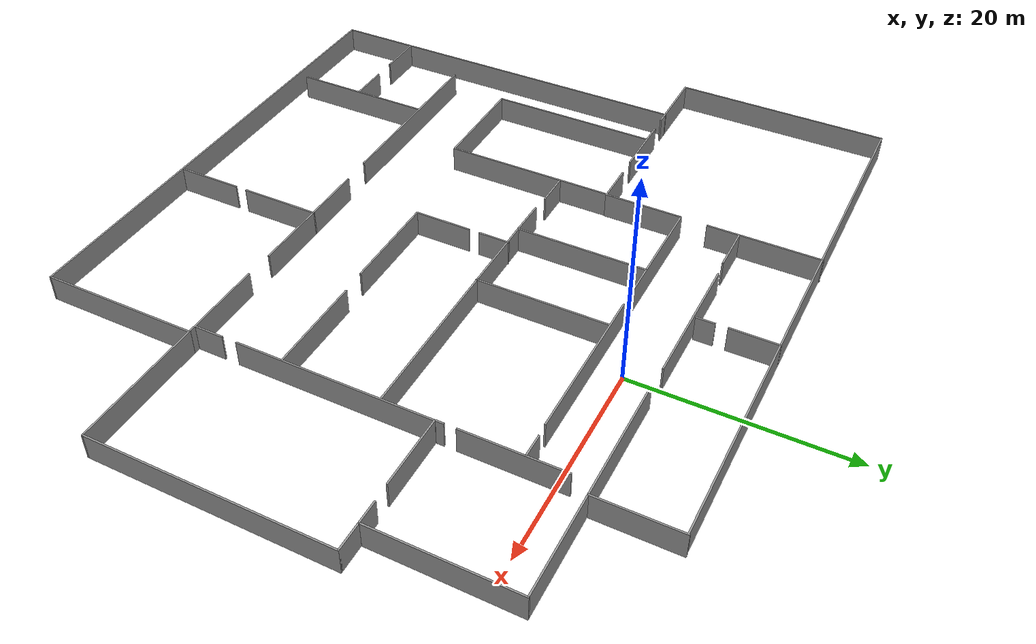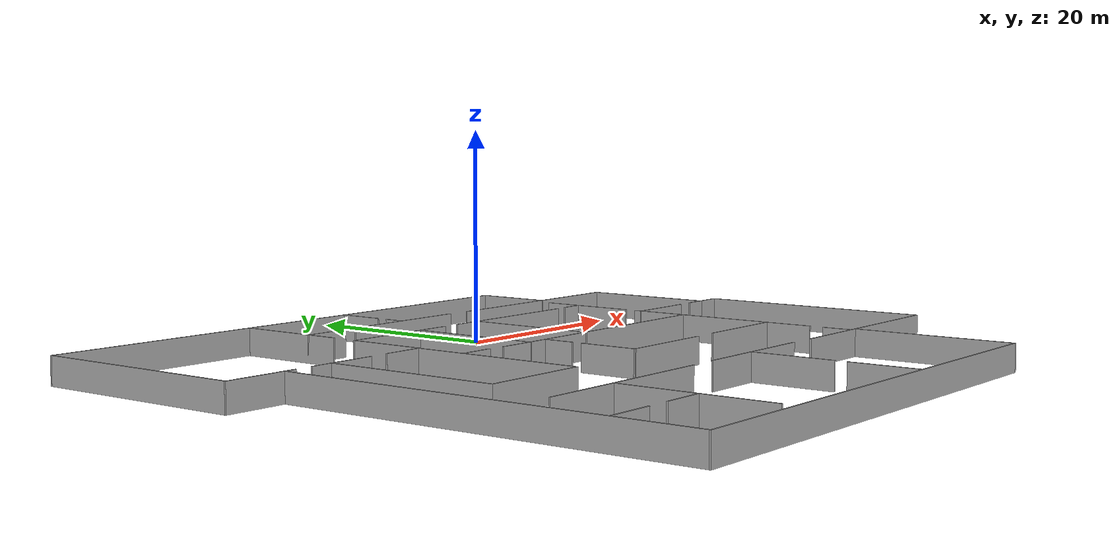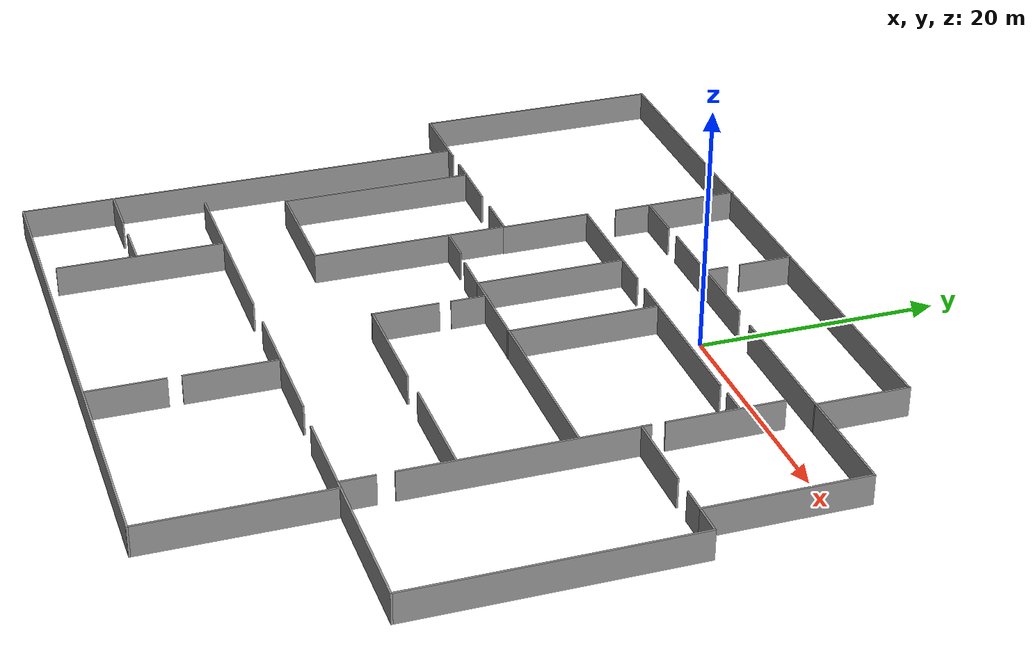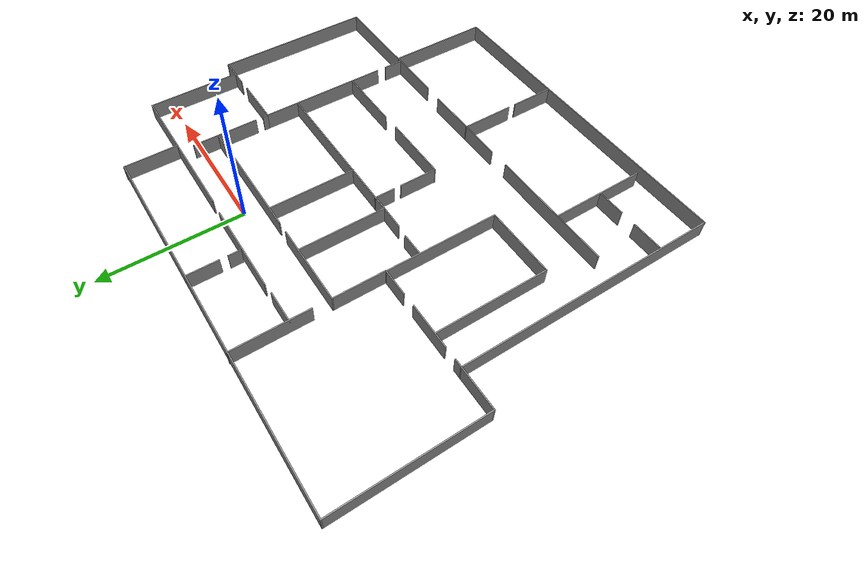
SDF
<?xml version='1.0'?>
<sdf version='1.6'>
  <model name='Untitled'>
    <pose frame=''>-6.86365 -18.3853 0 0 -0 0</pose>
    <link name='Wall_10'>
      <collision name='Wall_10_Collision'>
        <geometry>
          <box>
            <size>48 0.15 2.5</size>
          </box>
        </geometry>
        <pose frame=''>0 0 1.25 0 -0 0</pose>
      </collision>
      <visual name='Wall_10_Visual'>
        <pose frame=''>0 0 1.25 0 -0 0</pose>
        <geometry>
          <box>
            <size>48 0.15 2.5</size>
          </box>
        </geometry>
        <material>
          <script>
            <uri>file://media/materials/scripts/gazebo.material</uri>
            <name>Gazebo/Grey</name>
          </script>
          <ambient>1 1 1 1</ambient>
        </material>
        <meta>
          <layer>0</layer>
        </meta>
      </visual>
      <pose frame=''>-3.38843 -29.0855 0 0 -0 -3.14158</pose>
    </link>
    <link name='Wall_11'>
      <collision name='Wall_11_Collision'>
        <geometry>
          <box>
            <size>37.681 0.15 2.5</size>
          </box>
        </geometry>
        <pose frame=''>0 0 1.25 0 -0 0</pose>
      </collision>
      <visual name='Wall_11_Visual'>
        <pose frame=''>0 0 1.25 0 -0 0</pose>
        <geometry>
          <box>
            <size>37.681 0.15 2.5</size>
          </box>
        </geometry>
        <material>
          <script>
            <uri>file://media/materials/scripts/gazebo.material</uri>
            <name>Gazebo/Grey</name>
          </script>
          <ambient>1 1 1 1</ambient>
        </material>
        <meta>
          <layer>0</layer>
        </meta>
      </visual>
      <pose frame=''>-27.3133 -10.3202 0 0 -0 1.5708</pose>
    </link>
    <link name='Wall_12'>
      <collision name='Wall_12_Collision'>
        <geometry>
          <box>
            <size>5.97327 0.15 2.5</size>
          </box>
        </geometry>
        <pose frame=''>0 0 1.25 0 -0 0</pose>
      </collision>
      <visual name='Wall_12_Visual'>
        <pose frame=''>0 0 1.25 0 -0 0</pose>
        <geometry>
          <box>
            <size>5.97327 0.15 2.5</size>
          </box>
        </geometry>
        <material>
          <script>
            <uri>file://media/materials/scripts/gazebo.material</uri>
            <name>Gazebo/Grey</name>
          </script>
          <ambient>1 1 1 1</ambient>
        </material>
        <meta>
          <layer>0</layer>
        </meta>
      </visual>
      <pose frame=''>-30.2248 8.44476 0 0 -0 -3.14142</pose>
    </link>
    <link name='Wall_13'>
      <collision name='Wall_13_Collision'>
        <geometry>
          <box>
            <size>20.708 0.15 2.5</size>
          </box>
        </geometry>
        <pose frame=''>0 0 1.25 0 -0 0</pose>
      </collision>
      <visual name='Wall_13_Visual'>
        <pose frame=''>0 0 1.25 0 -0 0</pose>
        <geometry>
          <box>
            <size>20.708 0.15 2.5</size>
          </box>
        </geometry>
        <material>
          <script>
            <uri>file://media/materials/scripts/gazebo.material</uri>
            <name>Gazebo/Grey</name>
          </script>
          <ambient>1 1 1 1</ambient>
        </material>
        <meta>
          <layer>0</layer>
        </meta>
      </visual>
      <pose frame=''>-33.1363 18.7233 0 0 -0 1.5708</pose>
    </link>
    <link name='Wall_18'>
      <collision name='Wall_18_Collision'>
        <geometry>
          <box>
            <size>8.25 0.15 2.5</size>
          </box>
        </geometry>
        <pose frame=''>0 0 1.25 0 -0 0</pose>
      </collision>
      <visual name='Wall_18_Visual'>
        <pose frame=''>0 0 1.25 0 -0 0</pose>
        <geometry>
          <box>
            <size>8.25 0.15 2.5</size>
          </box>
        </geometry>
        <material>
          <script>
            <uri>file://media/materials/scripts/gazebo.material</uri>
            <name>Gazebo/Grey</name>
          </script>
          <ambient>1 1 1 1</ambient>
        </material>
        <meta>
          <layer>0</layer>
        </meta>
      </visual>
      <pose frame=''>16.4865 -14.2353 0 0 -0 3.14159</pose>
    </link>
    <link name='Wall_2'>
      <collision name='Wall_2_Collision'>
        <geometry>
          <box>
            <size>54.223 0.15 2.5</size>
          </box>
        </geometry>
        <pose frame=''>0 0 1.25 0 -0 0</pose>
      </collision>
      <visual name='Wall_2_Visual'>
        <pose frame=''>0 0 1.25 0 -0 0</pose>
        <geometry>
          <box>
            <size>54.223 0.15 2.5</size>
          </box>
        </geometry>
        <material>
          <script>
            <uri>file://media/materials/scripts/gazebo.material</uri>
            <name>Gazebo/Grey</name>
          </script>
          <ambient>1 1 1 1</ambient>
        </material>
        <meta>
          <layer>0</layer>
        </meta>
      </visual>
      <pose frame=''>-6.09985 29.002 0 0 -0 0</pose>
    </link>
    <link name='Wall_20'>
      <collision name='Wall_20_Collision'>
        <geometry>
          <box>
            <size>12.869 0.15 2.5</size>
          </box>
        </geometry>
        <pose frame=''>0 0 1.25 0 -0 0</pose>
      </collision>
      <visual name='Wall_20_Visual'>
        <pose frame=''>0 0 1.25 0 -0 0</pose>
        <geometry>
          <box>
            <size>12.869 0.15 2.5</size>
          </box>
        </geometry>
        <material>
          <script>
            <uri>file://media/materials/scripts/gazebo.material</uri>
            <name>Gazebo/Grey</name>
          </script>
          <ambient>1 1 1 1</ambient>
        </material>
        <meta>
          <layer>0</layer>
        </meta>
      </visual>
      <pose frame=''>3.22315 -14.1347 0 0 -0 3.14159</pose>
    </link>
    <link name='Wall_22'>
      <collision name='Wall_22_Collision'>
        <geometry>
          <box>
            <size>18.15 0.15 2.5</size>
          </box>
        </geometry>
        <pose frame=''>0 0 1.25 0 -0 0</pose>
      </collision>
      <visual name='Wall_22_Visual'>
        <pose frame=''>0 0 1.25 0 -0 0</pose>
        <geometry>
          <box>
            <size>18.15 0.15 2.5</size>
          </box>
        </geometry>
        <material>
          <script>
            <uri>file://media/materials/scripts/gazebo.material</uri>
            <name>Gazebo/Grey</name>
          </script>
          <ambient>1 1 1 1</ambient>
        </material>
        <meta>
          <layer>0</layer>
        </meta>
      </visual>
      <pose frame=''>-15.1363 -14.2037 0 0 -0 3.14159</pose>
    </link>
    <link name='Wall_24'>
      <collision name='Wall_24_Collision'>
        <geometry>
          <box>
            <size>13.75 0.15 2.5</size>
          </box>
        </geometry>
        <pose frame=''>0 0 1.25 0 -0 0</pose>
      </collision>
      <visual name='Wall_24_Visual'>
        <pose frame=''>0 0 1.25 0 -0 0</pose>
        <geometry>
          <box>
            <size>13.75 0.15 2.5</size>
          </box>
        </geometry>
        <material>
          <script>
            <uri>file://media/materials/scripts/gazebo.material</uri>
            <name>Gazebo/Grey</name>
          </script>
          <ambient>1 1 1 1</ambient>
        </material>
        <meta>
          <layer>0</layer>
        </meta>
      </visual>
      <pose frame=''>-16.6456 -21.1328 0 0 -0 -1.5708</pose>
    </link>
    <link name='Wall_26'>
      <collision name='Wall_26_Collision'>
        <geometry>
          <box>
            <size>7.636 0.15 2.5</size>
          </box>
        </geometry>
        <pose frame=''>0 0 1.25 0 -0 0</pose>
      </collision>
      <visual name='Wall_26_Visual'>
        <pose frame=''>0 0 1.25 0 -0 0</pose>
        <geometry>
          <box>
            <size>7.636 0.15 2.5</size>
          </box>
        </geometry>
        <material>
          <script>
            <uri>file://media/materials/scripts/gazebo.material</uri>
            <name>Gazebo/Grey</name>
          </script>
          <ambient>1 1 1 1</ambient>
        </material>
        <meta>
          <layer>0</layer>
        </meta>
      </visual>
      <pose frame=''>2.68865 -17.8717 0 0 -0 -1.5708</pose>
    </link>
    <link name='Wall_28'>
      <collision name='Wall_28_Collision'>
        <geometry>
          <box>
            <size>6.25 0.15 2.5</size>
          </box>
        </geometry>
        <pose frame=''>0 0 1.25 0 -0 0</pose>
      </collision>
      <visual name='Wall_28_Visual'>
        <pose frame=''>0 0 1.25 0 -0 0</pose>
        <geometry>
          <box>
            <size>6.25 0.15 2.5</size>
          </box>
        </geometry>
        <material>
          <script>
            <uri>file://media/materials/scripts/gazebo.material</uri>
            <name>Gazebo/Grey</name>
          </script>
          <ambient>1 1 1 1</ambient>
        </material>
        <meta>
          <layer>0</layer>
        </meta>
      </visual>
      <pose frame=''>2.68817 -25.8958 0 0 -0 -1.5708</pose>
    </link>
    <link name='Wall_3'>
      <collision name='Wall_3_Collision'>
        <geometry>
          <box>
            <size>7.74888 0.15 2.5</size>
          </box>
        </geometry>
        <pose frame=''>0 0 1.25 0 -0 0</pose>
      </collision>
      <visual name='Wall_3_Visual'>
        <pose frame=''>0 0 1.25 0 -0 0</pose>
        <geometry>
          <box>
            <size>7.74888 0.15 2.5</size>
          </box>
        </geometry>
        <material>
          <script>
            <uri>file://media/materials/scripts/gazebo.material</uri>
            <name>Gazebo/Grey</name>
          </script>
          <ambient>1 1 1 1</ambient>
        </material>
        <meta>
          <layer>0</layer>
        </meta>
      </visual>
      <pose frame=''>20.9366 25.2641 0 0 -0 -1.57082</pose>
    </link>
    <link name='Wall_30'>
      <collision name='Wall_30_Collision'>
        <geometry>
          <box>
            <size>4.5 0.15 2.5</size>
          </box>
        </geometry>
        <pose frame=''>0 0 1.25 0 -0 0</pose>
      </collision>
      <visual name='Wall_30_Visual'>
        <pose frame=''>0 0 1.25 0 -0 0</pose>
        <geometry>
          <box>
            <size>4.5 0.15 2.5</size>
          </box>
        </geometry>
        <material>
          <script>
            <uri>file://media/materials/scripts/gazebo.material</uri>
            <name>Gazebo/Grey</name>
          </script>
          <ambient>1 1 1 1</ambient>
        </material>
        <meta>
          <layer>0</layer>
        </meta>
      </visual>
      <pose frame=''>-25.0531 -21.4469 0 0 -0 0</pose>
    </link>
    <link name='Wall_32'>
      <collision name='Wall_32_Collision'>
        <geometry>
          <box>
            <size>4 0.15 2.5</size>
          </box>
        </geometry>
        <pose frame=''>0 0 1.25 0 -0 0</pose>
      </collision>
      <visual name='Wall_32_Visual'>
        <pose frame=''>0 0 1.25 0 -0 0</pose>
        <geometry>
          <box>
            <size>4 0.15 2.5</size>
          </box>
        </geometry>
        <material>
          <script>
            <uri>file://media/materials/scripts/gazebo.material</uri>
            <name>Gazebo/Grey</name>
          </script>
          <ambient>1 1 1 1</ambient>
        </material>
        <meta>
          <layer>0</layer>
        </meta>
      </visual>
      <pose frame=''>-18.6071 -21.4469 0 0 -0 3.14159</pose>
    </link>
    <link name='Wall_34'>
      <collision name='Wall_34_Collision'>
        <geometry>
          <box>
            <size>2.25 0.15 2.5</size>
          </box>
        </geometry>
        <pose frame=''>0 0 1.25 0 -0 0</pose>
      </collision>
      <visual name='Wall_34_Visual'>
        <pose frame=''>0 0 1.25 0 -0 0</pose>
        <geometry>
          <box>
            <size>2.25 0.15 2.5</size>
          </box>
        </geometry>
        <material>
          <script>
            <uri>file://media/materials/scripts/gazebo.material</uri>
            <name>Gazebo/Grey</name>
          </script>
          <ambient>1 1 1 1</ambient>
        </material>
        <meta>
          <layer>0</layer>
        </meta>
      </visual>
      <pose frame=''>29.4865 8.36469 0 0 -0 3.14159</pose>
    </link>
    <link name='Wall_36'>
      <collision name='Wall_36_Collision'>
        <geometry>
          <box>
            <size>2.75 0.15 2.5</size>
          </box>
        </geometry>
        <pose frame=''>0 0 1.25 0 -0 0</pose>
      </collision>
      <visual name='Wall_36_Visual'>
        <pose frame=''>0 0 1.25 0 -0 0</pose>
        <geometry>
          <box>
            <size>2.75 0.15 2.5</size>
          </box>
        </geometry>
        <material>
          <script>
            <uri>file://media/materials/scripts/gazebo.material</uri>
            <name>Gazebo/Grey</name>
          </script>
          <ambient>1 1 1 1</ambient>
        </material>
        <meta>
          <layer>0</layer>
        </meta>
      </visual>
      <pose frame=''>19.7986 -12.8292 0 0 -0 1.5708</pose>
    </link>
    <link name='Wall_38'>
      <collision name='Wall_38_Collision'>
        <geometry>
          <box>
            <size>18.5 0.15 2.5</size>
          </box>
        </geometry>
        <pose frame=''>0 0 1.25 0 -0 0</pose>
      </collision>
      <visual name='Wall_38_Visual'>
        <pose frame=''>0 0 1.25 0 -0 0</pose>
        <geometry>
          <box>
            <size>18.5 0.15 2.5</size>
          </box>
        </geometry>
        <material>
          <script>
            <uri>file://media/materials/scripts/gazebo.material</uri>
            <name>Gazebo/Grey</name>
          </script>
          <ambient>1 1 1 1</ambient>
        </material>
        <meta>
          <layer>0</layer>
        </meta>
      </visual>
      <pose frame=''>19.7986 -0.86493 0 0 -0 1.5708</pose>
    </link>
    <link name='Wall_4'>
      <collision name='Wall_4_Collision'>
        <geometry>
          <box>
            <size>9.75 0.15 2.5</size>
          </box>
        </geometry>
        <pose frame=''>0 0 1.25 0 -0 0</pose>
      </collision>
      <visual name='Wall_4_Visual'>
        <pose frame=''>0 0 1.25 0 -0 0</pose>
        <geometry>
          <box>
            <size>9.75 0.15 2.5</size>
          </box>
        </geometry>
        <material>
          <script>
            <uri>file://media/materials/scripts/gazebo.material</uri>
            <name>Gazebo/Grey</name>
          </script>
          <ambient>1 1 1 1</ambient>
        </material>
        <meta>
          <layer>0</layer>
        </meta>
      </visual>
      <pose frame=''>25.7365 21.4647 0 0 -0 0</pose>
    </link>
    <link name='Wall_40'>
      <collision name='Wall_40_Collision'>
        <geometry>
          <box>
            <size>7 0.15 2.5</size>
          </box>
        </geometry>
        <pose frame=''>0 0 1.25 0 -0 0</pose>
      </collision>
      <visual name='Wall_40_Visual'>
        <pose frame=''>0 0 1.25 0 -0 0</pose>
        <geometry>
          <box>
            <size>7 0.15 2.5</size>
          </box>
        </geometry>
        <material>
          <script>
            <uri>file://media/materials/scripts/gazebo.material</uri>
            <name>Gazebo/Grey</name>
          </script>
          <ambient>1 1 1 1</ambient>
        </material>
        <meta>
          <layer>0</layer>
        </meta>
      </visual>
      <pose frame=''>23.2236 8.31007 0 0 -0 0</pose>
    </link>
    <link name='Wall_42'>
      <collision name='Wall_42_Collision'>
        <geometry>
          <box>
            <size>0.75 0.15 2.5</size>
          </box>
        </geometry>
        <pose frame=''>0 0 1.25 0 -0 0</pose>
      </collision>
      <visual name='Wall_42_Visual'>
        <pose frame=''>0 0 1.25 0 -0 0</pose>
        <geometry>
          <box>
            <size>0.75 0.15 2.5</size>
          </box>
        </geometry>
        <material>
          <script>
            <uri>file://media/materials/scripts/gazebo.material</uri>
            <name>Gazebo/Grey</name>
          </script>
          <ambient>1 1 1 1</ambient>
        </material>
        <meta>
          <layer>0</layer>
        </meta>
      </visual>
      <pose frame=''>19.7645 8.73044 0 0 -0 1.5708</pose>
    </link>
    <link name='Wall_44'>
      <collision name='Wall_44_Collision'>
        <geometry>
          <box>
            <size>9.5 0.15 2.5</size>
          </box>
        </geometry>
        <pose frame=''>0 0 1.25 0 -0 0</pose>
      </collision>
      <visual name='Wall_44_Visual'>
        <pose frame=''>0 0 1.25 0 -0 0</pose>
        <geometry>
          <box>
            <size>9.5 0.15 2.5</size>
          </box>
        </geometry>
        <material>
          <script>
            <uri>file://media/materials/scripts/gazebo.material</uri>
            <name>Gazebo/Grey</name>
          </script>
          <ambient>1 1 1 1</ambient>
        </material>
        <meta>
          <layer>0</layer>
        </meta>
      </visual>
      <pose frame=''>19.7645 14.9017 0 0 -0 1.5708</pose>
    </link>
    <link name='Wall_47'>
      <collision name='Wall_47_Collision'>
        <geometry>
          <box>
            <size>12 0.15 2.5</size>
          </box>
        </geometry>
        <pose frame=''>0 0 1.25 0 -0 0</pose>
      </collision>
      <visual name='Wall_47_Visual'>
        <pose frame=''>0 0 1.25 0 -0 0</pose>
        <geometry>
          <box>
            <size>12 0.15 2.5</size>
          </box>
        </geometry>
        <material>
          <script>
            <uri>file://media/materials/scripts/gazebo.material</uri>
            <name>Gazebo/Grey</name>
          </script>
          <ambient>1 1 1 1</ambient>
        </material>
        <meta>
          <layer>0</layer>
        </meta>
      </visual>
      <pose frame=''>15.0115 21.4647 0 0 -0 3.14159</pose>
    </link>
    <link name='Wall_49'>
      <collision name='Wall_49_Collision'>
        <geometry>
          <box>
            <size>1.25 0.15 2.5</size>
          </box>
        </geometry>
        <pose frame=''>0 0 1.25 0 -0 0</pose>
      </collision>
      <visual name='Wall_49_Visual'>
        <pose frame=''>0 0 1.25 0 -0 0</pose>
        <geometry>
          <box>
            <size>1.25 0.15 2.5</size>
          </box>
        </geometry>
        <material>
          <script>
            <uri>file://media/materials/scripts/gazebo.material</uri>
            <name>Gazebo/Grey</name>
          </script>
          <ambient>1 1 1 1</ambient>
        </material>
        <meta>
          <layer>0</layer>
        </meta>
      </visual>
      <pose frame=''>-26.7633 8.44526 0 0 -0 0</pose>
    </link>
    <link name='Wall_5'>
      <collision name='Wall_5_Collision'>
        <geometry>
          <box>
            <size>13.25 0.15 2.5</size>
          </box>
        </geometry>
        <pose frame=''>0 0 1.25 0 -0 0</pose>
      </collision>
      <visual name='Wall_5_Visual'>
        <pose frame=''>0 0 1.25 0 -0 0</pose>
        <geometry>
          <box>
            <size>13.25 0.15 2.5</size>
          </box>
        </geometry>
        <material>
          <script>
            <uri>file://media/materials/scripts/gazebo.material</uri>
            <name>Gazebo/Grey</name>
          </script>
          <ambient>1 1 1 1</ambient>
        </material>
        <meta>
          <layer>0</layer>
        </meta>
      </visual>
      <pose frame=''>30.5365 14.9147 0 0 -0 -1.5708</pose>
    </link>
    <link name='Wall_51'>
      <collision name='Wall_51_Collision'>
        <geometry>
          <box>
            <size>6.5 0.15 2.5</size>
          </box>
        </geometry>
        <pose frame=''>0 0 1.25 0 -0 0</pose>
      </collision>
      <visual name='Wall_51_Visual'>
        <pose frame=''>0 0 1.25 0 -0 0</pose>
        <geometry>
          <box>
            <size>6.5 0.15 2.5</size>
          </box>
        </geometry>
        <material>
          <script>
            <uri>file://media/materials/scripts/gazebo.material</uri>
            <name>Gazebo/Grey</name>
          </script>
          <ambient>1 1 1 1</ambient>
        </material>
        <meta>
          <layer>0</layer>
        </meta>
      </visual>
      <pose frame=''>-21.2029 8.48047 0 0 -0 0</pose>
    </link>
    <link name='Wall_53'>
      <collision name='Wall_53_Collision'>
        <geometry>
          <box>
            <size>4 0.15 2.5</size>
          </box>
        </geometry>
        <pose frame=''>0 0 1.25 0 -0 0</pose>
      </collision>
      <visual name='Wall_53_Visual'>
        <pose frame=''>0 0 1.25 0 -0 0</pose>
        <geometry>
          <box>
            <size>4 0.15 2.5</size>
          </box>
        </geometry>
        <material>
          <script>
            <uri>file://media/materials/scripts/gazebo.material</uri>
            <name>Gazebo/Grey</name>
          </script>
          <ambient>1 1 1 1</ambient>
        </material>
        <meta>
          <layer>0</layer>
        </meta>
      </visual>
      <pose frame=''>-14.0851 8.54199 0 0 -0 0</pose>
    </link>
    <link name='Wall_54'>
      <collision name='Wall_54_Collision'>
        <geometry>
          <box>
            <size>7.5 0.15 2.5</size>
          </box>
        </geometry>
        <pose frame=''>0 0 1.25 0 -0 0</pose>
      </collision>
      <visual name='Wall_54_Visual'>
        <pose frame=''>0 0 1.25 0 -0 0</pose>
        <geometry>
          <box>
            <size>7.5 0.15 2.5</size>
          </box>
        </geometry>
        <material>
          <script>
            <uri>file://media/materials/scripts/gazebo.material</uri>
            <name>Gazebo/Grey</name>
          </script>
          <ambient>1 1 1 1</ambient>
        </material>
        <meta>
          <layer>0</layer>
        </meta>
      </visual>
      <pose frame=''>-12.1602 12.2171 0 0 -0 1.57083</pose>
    </link>
    <link name='Wall_56'>
      <collision name='Wall_56_Collision'>
        <geometry>
          <box>
            <size>11.75 0.15 2.5</size>
          </box>
        </geometry>
        <pose frame=''>0 0 1.25 0 -0 0</pose>
      </collision>
      <visual name='Wall_56_Visual'>
        <pose frame=''>0 0 1.25 0 -0 0</pose>
        <geometry>
          <box>
            <size>11.75 0.15 2.5</size>
          </box>
        </geometry>
        <material>
          <script>
            <uri>file://media/materials/scripts/gazebo.material</uri>
            <name>Gazebo/Grey</name>
          </script>
          <ambient>1 1 1 1</ambient>
        </material>
        <meta>
          <layer>0</layer>
        </meta>
      </visual>
      <pose frame=''>-6.36035 15.8923 0 0 -0 0</pose>
    </link>
    <link name='Wall_58'>
      <collision name='Wall_58_Collision'>
        <geometry>
          <box>
            <size>16.25 0.15 2.5</size>
          </box>
        </geometry>
        <pose frame=''>0 0 1.25 0 -0 0</pose>
      </collision>
      <visual name='Wall_58_Visual'>
        <pose frame=''>0 0 1.25 0 -0 0</pose>
        <geometry>
          <box>
            <size>16.25 0.15 2.5</size>
          </box>
        </geometry>
        <material>
          <script>
            <uri>file://media/materials/scripts/gazebo.material</uri>
            <name>Gazebo/Grey</name>
          </script>
          <ambient>1 1 1 1</ambient>
        </material>
        <meta>
          <layer>0</layer>
        </meta>
      </visual>
      <pose frame=''>-22.3294 0.427688 0 0 -0 -1.5708</pose>
    </link>
    <link name='Wall_59'>
      <collision name='Wall_59_Collision'>
        <geometry>
          <box>
            <size>10.25 0.15 2.5</size>
          </box>
        </geometry>
        <pose frame=''>0 0 1.25 0 -0 0</pose>
      </collision>
      <visual name='Wall_59_Visual'>
        <pose frame=''>0 0 1.25 0 -0 0</pose>
        <geometry>
          <box>
            <size>10.25 0.15 2.5</size>
          </box>
        </geometry>
        <material>
          <script>
            <uri>file://media/materials/scripts/gazebo.material</uri>
            <name>Gazebo/Grey</name>
          </script>
          <ambient>1 1 1 1</ambient>
        </material>
        <meta>
          <layer>0</layer>
        </meta>
      </visual>
      <pose frame=''>-17.2794 -7.62253 0 0 -0 -4.2e-05</pose>
    </link>
    <link name='Wall_6'>
      <collision name='Wall_6_Collision'>
        <geometry>
          <box>
            <size>2.75 0.15 2.5</size>
          </box>
        </geometry>
        <pose frame=''>0 0 1.25 0 -0 0</pose>
      </collision>
      <visual name='Wall_6_Visual'>
        <pose frame=''>0 0 1.25 0 -0 0</pose>
        <geometry>
          <box>
            <size>2.75 0.15 2.5</size>
          </box>
        </geometry>
        <material>
          <script>
            <uri>file://media/materials/scripts/gazebo.material</uri>
            <name>Gazebo/Grey</name>
          </script>
          <ambient>1 1 1 1</ambient>
        </material>
        <meta>
          <layer>0</layer>
        </meta>
      </visual>
      <pose frame=''>31.8365 8.36469 0 0 -0 0</pose>
    </link>
    <link name='Wall_60'>
      <collision name='Wall_60_Collision'>
        <geometry>
          <box>
            <size>16.315 0.15 2.5</size>
          </box>
        </geometry>
        <pose frame=''>0 0 1.25 0 -0 0</pose>
      </collision>
      <visual name='Wall_60_Visual'>
        <pose frame=''>0 0 1.25 0 -0 0</pose>
        <geometry>
          <box>
            <size>16.315 0.15 2.5</size>
          </box>
        </geometry>
        <material>
          <script>
            <uri>file://media/materials/scripts/gazebo.material</uri>
            <name>Gazebo/Grey</name>
          </script>
          <ambient>1 1 1 1</ambient>
        </material>
        <meta>
          <layer>0</layer>
        </meta>
      </visual>
      <pose frame=''>-12.2293 0.459762 0 0 -0 1.5708</pose>
    </link>
    <link name='Wall_62'>
      <collision name='Wall_62_Collision'>
        <geometry>
          <box>
            <size>3.25 0.15 2.5</size>
          </box>
        </geometry>
        <pose frame=''>0 0 1.25 0 -0 0</pose>
      </collision>
      <visual name='Wall_62_Visual'>
        <pose frame=''>0 0 1.25 0 -0 0</pose>
        <geometry>
          <box>
            <size>3.25 0.15 2.5</size>
          </box>
        </geometry>
        <material>
          <script>
            <uri>file://media/materials/scripts/gazebo.material</uri>
            <name>Gazebo/Grey</name>
          </script>
          <ambient>1 1 1 1</ambient>
        </material>
        <meta>
          <layer>0</layer>
        </meta>
      </visual>
      <pose frame=''>-10.5441 3.73374 0 0 -0 0</pose>
    </link>
    <link name='Wall_64'>
      <collision name='Wall_64_Collision'>
        <geometry>
          <box>
            <size>3.50032 0.15 2.5</size>
          </box>
        </geometry>
        <pose frame=''>0 0 1.25 0 -0 0</pose>
      </collision>
      <visual name='Wall_64_Visual'>
        <pose frame=''>0 0 1.25 0 -0 0</pose>
        <geometry>
          <box>
            <size>3.50032 0.15 2.5</size>
          </box>
        </geometry>
        <material>
          <script>
            <uri>file://media/materials/scripts/gazebo.material</uri>
            <name>Gazebo/Grey</name>
          </script>
          <ambient>1 1 1 1</ambient>
        </material>
        <meta>
          <layer>0</layer>
        </meta>
      </visual>
      <pose frame=''>-5.58844 3.55439 0 0 -0 -0.013887</pose>
    </link>
    <link name='Wall_65'>
      <collision name='Wall_65_Collision'>
        <geometry>
          <box>
            <size>12.5 0.15 2.5</size>
          </box>
        </geometry>
        <pose frame=''>0 0 1.25 0 -0 0</pose>
      </collision>
      <visual name='Wall_65_Visual'>
        <pose frame=''>0 0 1.25 0 -0 0</pose>
        <geometry>
          <box>
            <size>12.5 0.15 2.5</size>
          </box>
        </geometry>
        <material>
          <script>
            <uri>file://media/materials/scripts/gazebo.material</uri>
            <name>Gazebo/Grey</name>
          </script>
          <ambient>1 1 1 1</ambient>
        </material>
        <meta>
          <layer>0</layer>
        </meta>
      </visual>
      <pose frame=''>-3.82039 9.70612 0 0 -0 1.5708</pose>
    </link>
    <link name='Wall_67'>
      <collision name='Wall_67_Collision'>
        <geometry>
          <box>
            <size>12.5 0.15 2.5</size>
          </box>
        </geometry>
        <pose frame=''>0 0 1.25 0 -0 0</pose>
      </collision>
      <visual name='Wall_67_Visual'>
        <pose frame=''>0 0 1.25 0 -0 0</pose>
        <geometry>
          <box>
            <size>12.5 0.15 2.5</size>
          </box>
        </geometry>
        <material>
          <script>
            <uri>file://media/materials/scripts/gazebo.material</uri>
            <name>Gazebo/Grey</name>
          </script>
          <ambient>1 1 1 1</ambient>
        </material>
        <meta>
          <layer>0</layer>
        </meta>
      </visual>
      <pose frame=''>4.03939 9.65312 0 0 -0 -1.5708</pose>
    </link>
    <link name='Wall_7'>
      <collision name='Wall_7_Collision'>
        <geometry>
          <box>
            <size>22.75 0.15 2.5</size>
          </box>
        </geometry>
        <pose frame=''>0 0 1.25 0 -0 0</pose>
      </collision>
      <visual name='Wall_7_Visual'>
        <pose frame=''>0 0 1.25 0 -0 0</pose>
        <geometry>
          <box>
            <size>22.75 0.15 2.5</size>
          </box>
        </geometry>
        <material>
          <script>
            <uri>file://media/materials/scripts/gazebo.material</uri>
            <name>Gazebo/Grey</name>
          </script>
          <ambient>1 1 1 1</ambient>
        </material>
        <meta>
          <layer>0</layer>
        </meta>
      </visual>
      <pose frame=''>33.1365 -2.93531 0 0 -0 -1.5708</pose>
    </link>
    <link name='Wall_70'>
      <collision name='Wall_70_Collision'>
        <geometry>
          <box>
            <size>8 0.15 2.5</size>
          </box>
        </geometry>
        <pose frame=''>0 0 1.25 0 -0 0</pose>
      </collision>
      <visual name='Wall_70_Visual'>
        <pose frame=''>0 0 1.25 0 -0 0</pose>
        <geometry>
          <box>
            <size>8 0.15 2.5</size>
          </box>
        </geometry>
        <material>
          <script>
            <uri>file://media/materials/scripts/gazebo.material</uri>
            <name>Gazebo/Grey</name>
          </script>
          <ambient>1 1 1 1</ambient>
        </material>
        <meta>
          <layer>0</layer>
        </meta>
      </visual>
      <pose frame=''>0.104607 3.53112 0 0 -0 0</pose>
    </link>
    <link name='Wall_72'>
      <collision name='Wall_72_Collision'>
        <geometry>
          <box>
            <size>15.25 0.15 2.5</size>
          </box>
        </geometry>
        <pose frame=''>0 0 1.25 0 -0 0</pose>
      </collision>
      <visual name='Wall_72_Visual'>
        <pose frame=''>0 0 1.25 0 -0 0</pose>
        <geometry>
          <box>
            <size>15.25 0.15 2.5</size>
          </box>
        </geometry>
        <material>
          <script>
            <uri>file://media/materials/scripts/gazebo.material</uri>
            <name>Gazebo/Grey</name>
          </script>
          <ambient>1 1 1 1</ambient>
        </material>
        <meta>
          <layer>0</layer>
        </meta>
      </visual>
      <pose frame=''>8.74898 15.8864 0 0 -0 0</pose>
    </link>
    <link name='Wall_74'>
      <collision name='Wall_74_Collision'>
        <geometry>
          <box>
            <size>2.25 0.15 2.5</size>
          </box>
        </geometry>
        <pose frame=''>0 0 1.25 0 -0 0</pose>
      </collision>
      <visual name='Wall_74_Visual'>
        <pose frame=''>0 0 1.25 0 -0 0</pose>
        <geometry>
          <box>
            <size>2.25 0.15 2.5</size>
          </box>
        </geometry>
        <material>
          <script>
            <uri>file://media/materials/scripts/gazebo.material</uri>
            <name>Gazebo/Grey</name>
          </script>
          <ambient>1 1 1 1</ambient>
        </material>
        <meta>
          <layer>0</layer>
        </meta>
      </visual>
      <pose frame=''>18.6423 15.9567 0 0 -0 0</pose>
    </link>
    <link name='Wall_76'>
      <collision name='Wall_76_Collision'>
        <geometry>
          <box>
            <size>15.75 0.15 2.5</size>
          </box>
        </geometry>
        <pose frame=''>0 0 1.25 0 -0 0</pose>
      </collision>
      <visual name='Wall_76_Visual'>
        <pose frame=''>0 0 1.25 0 -0 0</pose>
        <geometry>
          <box>
            <size>15.75 0.15 2.5</size>
          </box>
        </geometry>
        <material>
          <script>
            <uri>file://media/materials/scripts/gazebo.material</uri>
            <name>Gazebo/Grey</name>
          </script>
          <ambient>1 1 1 1</ambient>
        </material>
        <meta>
          <layer>0</layer>
        </meta>
      </visual>
      <pose frame=''>11.8296 3.53112 0 0 -0 0</pose>
    </link>
    <link name='Wall_78'>
      <collision name='Wall_78_Collision'>
        <geometry>
          <box>
            <size>3 0.15 2.5</size>
          </box>
        </geometry>
        <pose frame=''>0 0 1.25 0 -0 0</pose>
      </collision>
      <visual name='Wall_78_Visual'>
        <pose frame=''>0 0 1.25 0 -0 0</pose>
        <geometry>
          <box>
            <size>3 0.15 2.5</size>
          </box>
        </geometry>
        <material>
          <script>
            <uri>file://media/materials/scripts/gazebo.material</uri>
            <name>Gazebo/Grey</name>
          </script>
          <ambient>1 1 1 1</ambient>
        </material>
        <meta>
          <layer>0</layer>
        </meta>
      </visual>
      <pose frame=''>-1.69561 2.15219 0 0 -0 -1.5708</pose>
    </link>
    <link name='Wall_8'>
      <collision name='Wall_8_Collision'>
        <geometry>
          <box>
            <size>12.75 0.15 2.5</size>
          </box>
        </geometry>
        <pose frame=''>0 0 1.25 0 -0 0</pose>
      </collision>
      <visual name='Wall_8_Visual'>
        <pose frame=''>0 0 1.25 0 -0 0</pose>
        <geometry>
          <box>
            <size>12.75 0.15 2.5</size>
          </box>
        </geometry>
        <material>
          <script>
            <uri>file://media/materials/scripts/gazebo.material</uri>
            <name>Gazebo/Grey</name>
          </script>
          <ambient>1 1 1 1</ambient>
        </material>
        <meta>
          <layer>0</layer>
        </meta>
      </visual>
      <pose frame=''>26.8365 -14.2353 0 0 -0 3.14159</pose>
    </link>
    <link name='Wall_80'>
      <collision name='Wall_80_Collision'>
        <geometry>
          <box>
            <size>9.5 0.15 2.5</size>
          </box>
        </geometry>
        <pose frame=''>0 0 1.25 0 -0 0</pose>
      </collision>
      <visual name='Wall_80_Visual'>
        <pose frame=''>0 0 1.25 0 -0 0</pose>
        <geometry>
          <box>
            <size>9.5 0.15 2.5</size>
          </box>
        </geometry>
        <material>
          <script>
            <uri>file://media/materials/scripts/gazebo.material</uri>
            <name>Gazebo/Grey</name>
          </script>
          <ambient>1 1 1 1</ambient>
        </material>
        <meta>
          <layer>0</layer>
        </meta>
      </visual>
      <pose frame=''>15.1091 -5.6398 0 0 -0 3.14159</pose>
    </link>
    <link name='Wall_82'>
      <collision name='Wall_82_Collision'>
        <geometry>
          <box>
            <size>9.75 0.15 2.5</size>
          </box>
        </geometry>
        <pose frame=''>0 0 1.25 0 -0 0</pose>
      </collision>
      <visual name='Wall_82_Visual'>
        <pose frame=''>0 0 1.25 0 -0 0</pose>
        <geometry>
          <box>
            <size>9.75 0.15 2.5</size>
          </box>
        </geometry>
        <material>
          <script>
            <uri>file://media/materials/scripts/gazebo.material</uri>
            <name>Gazebo/Grey</name>
          </script>
          <ambient>1 1 1 1</ambient>
        </material>
        <meta>
          <layer>0</layer>
        </meta>
      </visual>
      <pose frame=''>3.09992 -5.73338 0 0 -0 3.14159</pose>
    </link>
    <link name='Wall_83'>
      <collision name='Wall_83_Collision'>
        <geometry>
          <box>
            <size>5.5 0.15 2.5</size>
          </box>
        </geometry>
        <pose frame=''>0 0 1.25 0 -0 0</pose>
      </collision>
      <visual name='Wall_83_Visual'>
        <pose frame=''>0 0 1.25 0 -0 0</pose>
        <geometry>
          <box>
            <size>5.5 0.15 2.5</size>
          </box>
        </geometry>
        <material>
          <script>
            <uri>file://media/materials/scripts/gazebo.material</uri>
            <name>Gazebo/Grey</name>
          </script>
          <ambient>1 1 1 1</ambient>
        </material>
        <meta>
          <layer>0</layer>
        </meta>
      </visual>
      <pose frame=''>-1.70008 -3.05838 0 0 -0 1.5708</pose>
    </link>
    <link name='Wall_85'>
      <collision name='Wall_85_Collision'>
        <geometry>
          <box>
            <size>10.75 0.15 2.5</size>
          </box>
        </geometry>
        <pose frame=''>0 0 1.25 0 -0 0</pose>
      </collision>
      <visual name='Wall_85_Visual'>
        <pose frame=''>0 0 1.25 0 -0 0</pose>
        <geometry>
          <box>
            <size>10.75 0.15 2.5</size>
          </box>
        </geometry>
        <material>
          <script>
            <uri>file://media/materials/scripts/gazebo.material</uri>
            <name>Gazebo/Grey</name>
          </script>
          <ambient>1 1 1 1</ambient>
        </material>
        <meta>
          <layer>0</layer>
        </meta>
      </visual>
      <pose frame=''>-12.09 23.7857 0 0 -0 1.5708</pose>
    </link>
    <link name='Wall_87'>
      <collision name='Wall_87_Collision'>
        <geometry>
          <box>
            <size>4.5 0.15 2.5</size>
          </box>
        </geometry>
        <pose frame=''>0 0 1.25 0 -0 0</pose>
      </collision>
      <visual name='Wall_87_Visual'>
        <pose frame=''>0 0 1.25 0 -0 0</pose>
        <geometry>
          <box>
            <size>4.5 0.15 2.5</size>
          </box>
        </geometry>
        <material>
          <script>
            <uri>file://media/materials/scripts/gazebo.material</uri>
            <name>Gazebo/Grey</name>
          </script>
          <ambient>1 1 1 1</ambient>
        </material>
        <meta>
          <layer>0</layer>
        </meta>
      </visual>
      <pose frame=''>-9.91499 21.4558 0 0 -0 0</pose>
    </link>
    <link name='Wall_89'>
      <collision name='Wall_89_Collision'>
        <geometry>
          <box>
            <size>13 0.15 2.5</size>
          </box>
        </geometry>
        <pose frame=''>0 0 1.25 0 -0 0</pose>
      </collision>
      <visual name='Wall_89_Visual'>
        <pose frame=''>0 0 1.25 0 -0 0</pose>
        <geometry>
          <box>
            <size>13 0.15 2.5</size>
          </box>
        </geometry>
        <material>
          <script>
            <uri>file://media/materials/scripts/gazebo.material</uri>
            <name>Gazebo/Grey</name>
          </script>
          <ambient>1 1 1 1</ambient>
        </material>
        <meta>
          <layer>0</layer>
        </meta>
      </visual>
      <pose frame=''>0.275223 21.5796 0 0 -0 0</pose>
    </link>
    <link name='Wall_9'>
      <collision name='Wall_9_Collision'>
        <geometry>
          <box>
            <size>15 0.15 2.5</size>
          </box>
        </geometry>
        <pose frame=''>0 0 1.25 0 -0 0</pose>
      </collision>
      <visual name='Wall_9_Visual'>
        <pose frame=''>0 0 1.25 0 -0 0</pose>
        <geometry>
          <box>
            <size>15 0.15 2.5</size>
          </box>
        </geometry>
        <material>
          <script>
            <uri>file://media/materials/scripts/gazebo.material</uri>
            <name>Gazebo/Grey</name>
          </script>
          <ambient>1 1 1 1</ambient>
        </material>
        <meta>
          <layer>0</layer>
        </meta>
      </visual>
      <pose frame=''>20.5365 -21.6603 0 0 -0 -1.5708</pose>
    </link>
    <link name='Wall_91'>
      <collision name='Wall_91_Collision'>
        <geometry>
          <box>
            <size>4.5 0.15 2.5</size>
          </box>
        </geometry>
        <pose frame=''>0 0 1.25 0 -0 0</pose>
      </collision>
      <visual name='Wall_91_Visual'>
        <pose frame=''>0 0 1.25 0 -0 0</pose>
        <geometry>
          <box>
            <size>4.5 0.15 2.5</size>
          </box>
        </geometry>
        <material>
          <script>
            <uri>file://media/materials/scripts/gazebo.material</uri>
            <name>Gazebo/Grey</name>
          </script>
          <ambient>1 1 1 1</ambient>
        </material>
        <meta>
          <layer>0</layer>
        </meta>
      </visual>
      <pose frame=''>-0.085804 26.8299 0 0 -0 -1.5708</pose>
    </link>
    <link name='Wall_93'>
      <collision name='Wall_93_Collision'>
        <geometry>
          <box>
            <size>1.75 0.15 2.5</size>
          </box>
        </geometry>
        <pose frame=''>0 0 1.25 0 -0 0</pose>
      </collision>
      <visual name='Wall_93_Visual'>
        <pose frame=''>0 0 1.25 0 -0 0</pose>
        <geometry>
          <box>
            <size>1.75 0.15 2.5</size>
          </box>
        </geometry>
        <material>
          <script>
            <uri>file://media/materials/scripts/gazebo.material</uri>
            <name>Gazebo/Grey</name>
          </script>
          <ambient>1 1 1 1</ambient>
        </material>
        <meta>
          <layer>0</layer>
        </meta>
      </visual>
      <pose frame=''>-0.085804 22.6359 0 0 -0 -1.5708</pose>
    </link>
    <static>1</static>
  </model>
</sdf>
